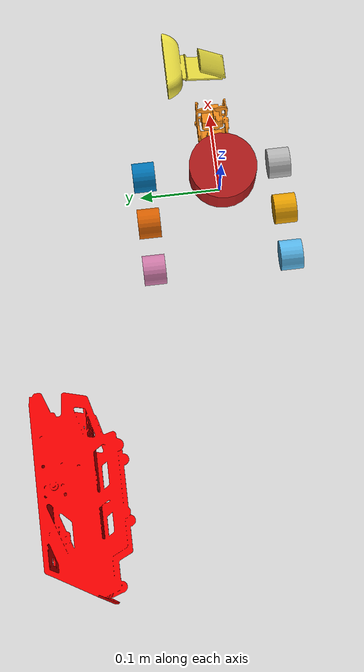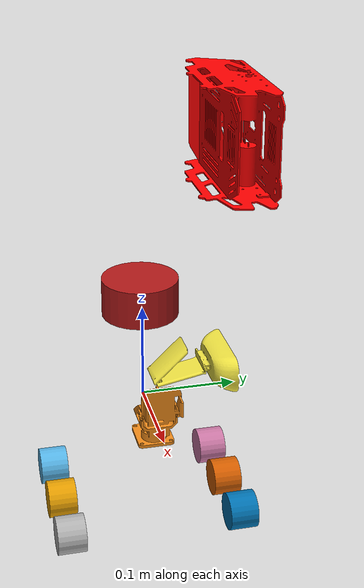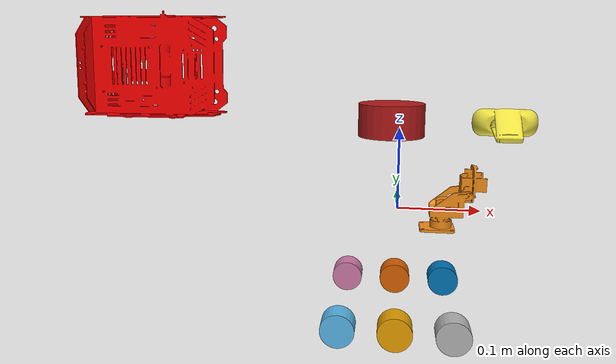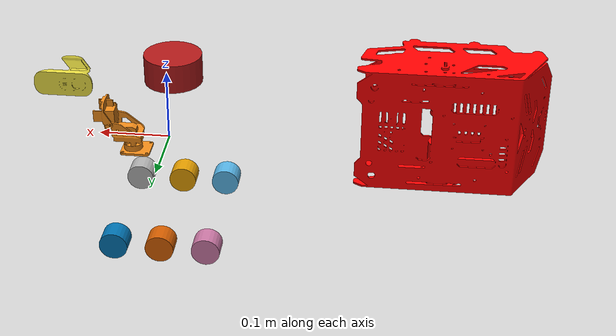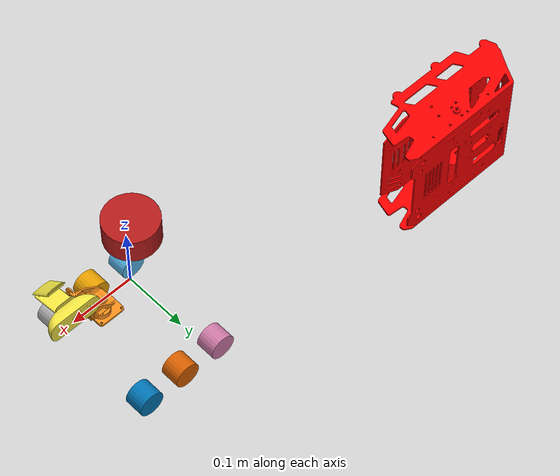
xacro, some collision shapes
<?xml version="1.0" ?>
<robot name="robot" xmlns:xacro="http://www.ros.org/wiki/xacro">

    <link name="world"></link>

    <!-- Link - chassis -->
    <link name="link_chassis">
        <collision>
            <origin xyz="0 0 -0.08" rpy="0 0 0"/>
            <geometry>
                <box size="0.25 0.25 0.1" />
            </geometry>
        </collision>
        <visual>
            <geometry>
                <mesh filename="package://ros_tank/meshes/tank_body.stl" pose="0 0 0" scale="0.00111 0.00111 0.0011"/>
            </geometry>
            <material name="Red">
                <color rgba="1 0 0 1" />
            </material>
        </visual>
    </link>

    <joint name="joint_world" type="fixed">
        <origin rpy="0 0 0" xyz="0 0 0" />
        <child link="link_chassis" />
        <parent link="world" />
    </joint>

    <!-- Laser scan -->
    <joint name="joint_laser_scan_chassis" type="fixed">
        <origin rpy="0 0 0" xyz="-0.01 0 0.11" />
        <child link="link_laser_scan" />
        <parent link="link_chassis" />
        <joint_properties damping="1.0" friction="1.0" />
    </joint>

    <link name="link_laser_scan">
        <inertial>
            <origin xyz="0 0 0" rpy="0 0 0" />
            <mass value="0.5" />
            <inertia ixx="0.000252666666667" ixy="0" ixz="0" iyy="0.000252666666667" iyz="0" izz="0.0005"/>
        </inertial>
        <visual>
            <origin xyz="0 0 0" rpy="0 0 0" />
            <geometry>
                <mesh filename="package://ros_tank/meshes/lidarA1.stl" pose="0 0 0" scale="0.00111 0.00111 0.0011"/>
            </geometry>
            <material name="Red">
                <color rgba="0.7 0.1 0.1 1" />
            </material>
        </visual>
        <collision>
            <origin xyz="0 0 0" rpy="0 0 0"/>
            <geometry>
                <cylinder radius="0.04" length="0.04"/>
            </geometry>
        </collision>
    </link>

    <!-- Camera -->
    <link name="camera_link">
        <collision>
            <origin xyz="0 0 0" rpy="0 0 0"/>
            <geometry>
                <box size="0.02 0.08 0.038"/>
            </geometry>
        </collision>
        <visual>
            <geometry>
                <mesh filename="package://ros_tank/meshes/camera.stl" pose="0 0 0" scale="0.00111 0.00111 0.0011"/>
            </geometry>
        </visual>
    </link>

    <joint name="camera_joint" type="fixed">
        <parent link="camera_second_servo_link"/>
        <child link="camera_link"/>
        <origin xyz="0.03 0 0.017" rpy="0 0 0"/>
    </joint>

    <!-- Link - left front wheel -->
    <link name="link_front_left_wheel">
        <inertial>
            <mass value="10" />
            <origin xyz="0 0 0.3" rpy="0 0 0" />
            <inertia ixx="1.5417" ixy="0" ixz="0" iyy="3.467" iyz="0" izz="4.742" />
        </inertial>
        <collision>
            <origin rpy="1.5707 0 0" xyz="0 -0.015 0" />
            <geometry>
                <cylinder length="0.03" radius="0.02"/>
            </geometry>
        </collision>
        <visual>
            <origin rpy="1.5707 0 0" xyz="0 0.015 0" />
            <geometry>
                <cylinder length="0.03" radius="0.02"/>
            </geometry>
        </visual>
    </link>

    <!-- Joint - chassis / left front wheel -->
    <joint name="joint_chassis_left_front_wheel" type="fixed">
        <origin rpy="0 0 0" xyz="0.065 0.077 -0.12" />
        <child link="link_front_left_wheel" />
        <parent link="link_chassis" />
        <axis rpy="0 0 0" xyz="0 1 0" />
        <limit effort="10000" velocity="1000" />
        <joint_properties damping="1.0" friction="1.0" />
    </joint>

    <!-- Link - left middle wheel -->
    <link name="link_middle_left_wheel">
        <inertial>
            <mass value="10" />
            <origin xyz="0 0 0.3" rpy="0 0 0" />
            <inertia ixx="1.5417" ixy="0" ixz="0" iyy="3.467" iyz="0" izz="4.742" />
        </inertial>
        <collision>
            <origin rpy="1.5707 0 0" xyz="0 0.015 0" />
            <geometry>
                <cylinder length="0.03" radius="0.02"/>
            </geometry>
        </collision>
        <visual>
            <origin rpy="1.5707 0 0" xyz="0 0.015 0" />
            <geometry>
                <cylinder length="0.03" radius="0.02"/>
            </geometry>
        </visual>
    </link>

    <!-- Joint - chassis / left middle wheel -->
    <joint name="joint_chassis_left_middle_wheel" type="continuous">
        <origin rpy="0 0 0" xyz="0 0.077 -0.12" />
        <child link="link_middle_left_wheel" />
        <parent link="link_chassis" />
        <axis rpy="0 0 0" xyz="0 1 0" />
        <limit effort="10000" velocity="1000" />
        <joint_properties damping="1.0" friction="1.0" />
    </joint>

    <!-- Link - left rear wheel -->
    <link name="link_rear_left_wheel">
        <inertial>
            <mass value="10" />
            <origin xyz="0 0 0.3" rpy="0 0 0" />
            <inertia ixx="1.5417" ixy="0" ixz="0" iyy="3.467" iyz="0" izz="4.742" />
        </inertial>
        <collision>
            <origin rpy="1.5707 0 0" xyz="0 0.015 0" />
            <geometry>
                <cylinder length="0.03" radius="0.02"/>
            </geometry>
        </collision>
        <visual>
            <origin rpy="1.5707 0 0" xyz="0 0.015 0" />
            <geometry>
                <cylinder length="0.03" radius="0.02"/>
            </geometry>
        </visual>
    </link>

    <!-- Joint - chassis / left rear wheel -->
    <joint name="joint_chassis_left_rear_wheel" type="fixed">
        <origin rpy="0 0 0" xyz="-0.065 0.077 -0.12" />
        <child link="link_rear_left_wheel" />
        <parent link="link_chassis" />
        <axis rpy="0 0 0" xyz="0 1 0" />
        <limit effort="10000" velocity="1000" />
        <joint_properties damping="1.0" friction="1.0" />
    </joint>

    <!-- Joint - chassis / right front wheel -->
    <joint name="joint_chassis_right_front_wheel" type="fixed">
        <origin rpy="0 0 0" xyz="0.065 -0.077 -0.12" />
        <child link="link_front_right_wheel" />
        <parent link="link_chassis" />
        <axis rpy="0 0 0" xyz="0 1 0" />
        <limit effort="10000" velocity="1000" />
        <joint_properties damping="1.0" friction="1.0" />
    </joint>

    <!-- Link - right front wheel -->
    <link name="link_front_right_wheel">
        <inertial>
            <mass value="10" />
            <origin xyz="0 0 0.3" rpy="0 0 0" />
            <inertia ixx="1.5417" ixy="0" ixz="0" iyy="3.467" iyz="0" izz="4.742" />
        </inertial>
        <collision>
            <origin rpy="1.5707 0 0" xyz="0 -0.015 0" />
            <geometry>
                <cylinder length="0.03" radius="0.02"/>
            </geometry>
        </collision>
        <visual>
            <origin rpy="1.5707 0 0" xyz="0 -0.015 0" />
            <geometry>
                <cylinder length="0.03" radius="0.02"/>
            </geometry>
        </visual>
    </link>

    <!-- Joint - chassis / right middle wheel -->
    <joint name="joint_chassis_right_middle_wheel" type="continuous">
        <origin rpy="0 0 0" xyz="0 -0.077 -0.12" />
        <child link="link_middle_right_wheel" />
        <parent link="link_chassis" />
        <axis rpy="0 0 0" xyz="0 1 0" />
        <limit effort="10000" velocity="1000" />
        <joint_properties damping="1.0" friction="1.0" />
    </joint>

    <!-- Link - right middle wheel -->
    <link name="link_middle_right_wheel">
        <inertial>
            <mass value="10" />
            <origin xyz="0 0 0.3" rpy="0 0 0" />
            <inertia ixx="1.5417" ixy="0" ixz="0" iyy="3.467" iyz="0" izz="4.742" />
        </inertial>
        <collision>
            <origin rpy="1.5707 0 0" xyz="0 -0.015 0" />
            <geometry>
                <cylinder length="0.03" radius="0.02"/>
            </geometry>
        </collision>
        <visual>
            <origin rpy="1.5707 0 0" xyz="0 -0.015 0" />
            <geometry>
                <cylinder length="0.03" radius="0.02"/>
            </geometry>
        </visual>
    </link>

     <!-- Joint - chassis / right rear wheel -->
    <joint name="joint_chassis_right_rear_wheel" type="fixed">
        <origin rpy="0 0 0" xyz="-0.065 -0.077 -0.12" />
        <child link="link_rear_right_wheel" />
        <parent link="link_chassis" />
        <axis rpy="0 0 0" xyz="0 1 0" />
        <limit effort="10000" velocity="1000" />
        <joint_properties damping="1.0" friction="1.0" />
    </joint>

    <!-- Link - right rear wheel -->
    <link name="link_rear_right_wheel">
        <inertial>
            <mass value="10" />
            <origin xyz="0 0 0.3" rpy="0 0 0" />
            <inertia ixx="1.5417" ixy="0" ixz="0" iyy="3.467" iyz="0" izz="4.742" />
        </inertial>
        <collision>
            <origin rpy="1.5707 0 0" xyz="0 -0.015 0" />
            <geometry>
                <cylinder length="0.03" radius="0.02"/>
            </geometry>
        </collision>
        <visual>
            <origin rpy="1.5707 0 0" xyz="0 -0.015 0" />
            <geometry>
                <cylinder length="0.03" radius="0.02"/>
            </geometry>
        </visual>
    </link>

     <!-- Joint - camera second servo -->
    <joint name="camera_servo_second_joint" type="revolute">
        <origin xyz="0.03 -0.005 0.02" rpy="0 0 0"/>
        <parent link="camera_servo_first_link"/>
        <child link="camera_second_servo_link"/>
        <axis xyz="0 1 0"/>
        <limit lower="-1.15" upper="1.4" velocity="100" effort="100"/>
    </joint>

    <!-- Link - camera second servo -->
    <link name="camera_second_servo_link">
        <collision>
            <origin xyz="0 0 0.01" rpy="0 0 0"/>
            <geometry>
                <box size="0.02 0.03 0.03" />
            </geometry>
        </collision>
        <visual>
            <origin xyz="0 0 0" rpy="0 0 0"/>
            <geometry>
                <mesh filename="package://ros_tank/meshes/camera_servo_2.stl" pose="0 0 0" scale="0.0011 0.00111 0.0011"/>
            </geometry>
            <material name="orange" />
        </visual>
    </link>

     <!-- Joint - camera first servo -->
    <joint name="camera_servo_first_joint" type="revolute">
        <origin xyz="0.053 0 0" rpy="0 0 0"/>
        <parent link="link_chassis"/>
        <child link="camera_servo_first_link"/>
        <axis xyz="0 0 1"/>
        <limit lower="-1.15" upper="1.4" velocity="100" effort="100"/>
    </joint>

    <!-- Link - camera first servo -->
    <link name="camera_servo_first_link">
        <collision>
            <origin xyz="0 0 -0.005" rpy="0 0 0"/>
            <geometry>
                <box size="0.03 0.04 0.03" />
            </geometry>
        </collision>
        <visual>
            <origin xyz="0 0 0" rpy="0 0 0"/>
            <geometry>
                <mesh filename="package://ros_tank/meshes/camera_servo_1.stl" pose="0 0 0" scale="0.0011 0.00111 0.0011"/>
            </geometry>
            <material name="orange" />
        </visual>
    </link>
</robot>
